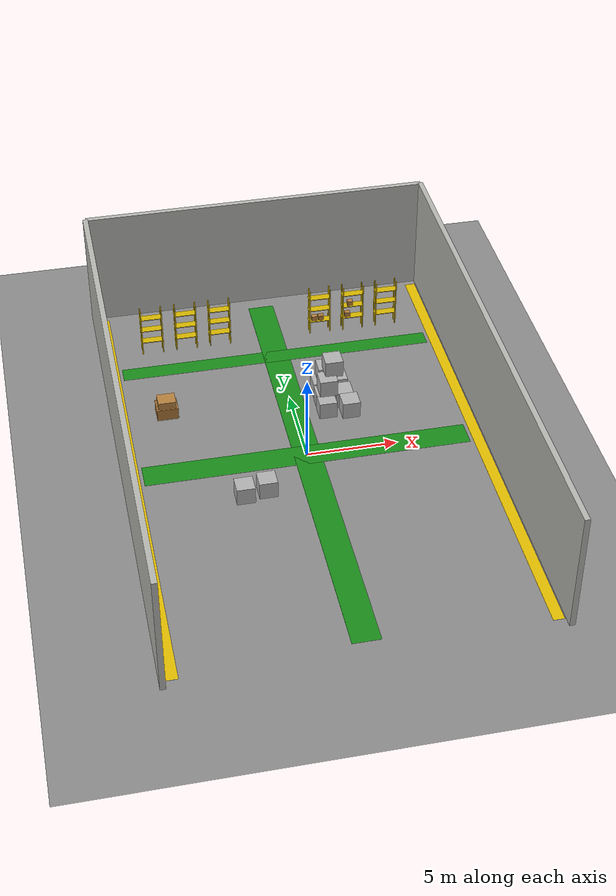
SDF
<sdf version="1.10">
 <world name="default">
  <model name="ground_plane">
   <static>true</static>
   <link name="link">
    <collision name="collision">
     <geometry><plane><normal>0 0 1</normal><size>40 30</size></plane></geometry>
     <surface><friction><ode><mu>0.0000000000000004</mu><mu2>0.0000000000000004</mu2></ode></friction></surface>
    </collision>
    <visual name="visual">
     <geometry><plane><normal>0 0 1</normal><size>20 30</size></plane></geometry>
     <material>
      <ambient>0.550000012 0.550000012 0.550000012 1</ambient>
      <diffuse>0.550000012 0.550000012 0.550000012 1</diffuse>
      <specular>0.100000001 0.100000001 0.100000001 1</specular>
     </material>
    </visual>
    <inertial>
     <mass>1</mass>
     <inertia><ixx>1</ixx><ixy>0</ixy><ixz>0</ixz><iyy>1</iyy><iyz>0</iyz><izz>1</izz></inertia>
    </inertial>
   </link>
  </model>
  <model name="wall_back">
   <static>true</static>
   <pose>10 0 3.5 0 0 0</pose>
   <link name="link">
    <collision name="c"><geometry><box><size>0.29999999999999999 30 7</size></box></geometry></collision>
    <visual name="v">
     <geometry><box><size>0.29999999999999999 30 7</size></box></geometry>
     <material>
      <ambient>0.720000029 0.720000029 0.699999988 1</ambient>
      <diffuse>0.720000029 0.720000029 0.699999988 1</diffuse>
     </material>
    </visual>
    <inertial>
     <mass>1</mass>
     <inertia><ixx>1</ixx><ixy>0</ixy><ixz>0</ixz><iyy>1</iyy><iyz>0</iyz><izz>1</izz></inertia>
    </inertial>
   </link>
  </model>
  <model name="wall_front">
   <static>true</static>
   <pose>-10 0 3.5 0 0 0</pose>
   <link name="link">
    <collision name="c"><geometry><box><size>0.29999999999999999 30 7</size></box></geometry></collision>
    <visual name="v">
     <geometry><box><size>0.29999999999999999 30 7</size></box></geometry>
     <material>
      <ambient>0.720000029 0.720000029 0.699999988 1</ambient>
      <diffuse>0.720000029 0.720000029 0.699999988 1</diffuse>
     </material>
    </visual>
    <inertial>
     <mass>1</mass>
     <inertia><ixx>1</ixx><ixy>0</ixy><ixz>0</ixz><iyy>1</iyy><iyz>0</iyz><izz>1</izz></inertia>
    </inertial>
   </link>
  </model>
  <model name="wall_right">
   <static>true</static>
   <pose>0 15 3.5 0 0 0</pose>
   <link name="link">
    <collision name="c"><geometry><box><size>20 0.29999999999999999 7</size></box></geometry></collision>
    <visual name="v">
     <geometry><box><size>20 0.29999999999999999 7</size></box></geometry>
     <material>
      <ambient>0.720000029 0.720000029 0.699999988 1</ambient>
      <diffuse>0.720000029 0.720000029 0.699999988 1</diffuse>
     </material>
    </visual>
    <inertial>
     <mass>1</mass>
     <inertia><ixx>1</ixx><ixy>0</ixy><ixz>0</ixz><iyy>1</iyy><iyz>0</iyz><izz>1</izz></inertia>
    </inertial>
   </link>
  </model>
  <model name="lane_centre_x">
   <static>true</static>
   <pose>0 0 0.002 0 0 0</pose>
   <link name="link">
    <visual name="v">
     <geometry><box><size>18 1.5 0.0050000000000000001</size></box></geometry>
     <material>
      <ambient>0.100000001 0.550000012 0.100000001 1</ambient>
      <diffuse>0.100000001 0.550000012 0.100000001 1</diffuse>
     </material>
    </visual>
    <inertial>
     <mass>1</mass>
     <inertia><ixx>1</ixx><ixy>0</ixy><ixz>0</ixz><iyy>1</iyy><iyz>0</iyz><izz>1</izz></inertia>
    </inertial>
   </link>
  </model>
  <model name="lane_centre_y">
   <static>true</static>
   <pose>0 0 0.0020000000949949026 0 0 0</pose>
   <link name="link">
    <visual name="v">
     <geometry><box><size>1.5 28 0.0050000000000000001</size></box></geometry>
     <material>
      <ambient>0.100000001 0.550000012 0.100000001 1</ambient>
      <diffuse>0.100000001 0.550000012 0.100000001 1</diffuse>
     </material>
    </visual>
    <inertial>
     <mass>1</mass>
     <inertia><ixx>1</ixx><ixy>0</ixy><ixz>0</ixz><iyy>1</iyy><iyz>0</iyz><izz>1</izz></inertia>
    </inertial>
   </link>
  </model>
  <model name="lane_right">
   <static>true</static>
   <pose>0 9 0.002 0 0 0</pose>
   <link name="link">
    <visual name="v">
     <geometry><box><size>18 1 0.0050000000000000001</size></box></geometry>
     <material>
      <ambient>0.100000001 0.550000012 0.100000001 1</ambient>
      <diffuse>0.100000001 0.550000012 0.100000001 1</diffuse>
     </material>
    </visual>
    <inertial>
     <mass>1</mass>
     <inertia><ixx>1</ixx><ixy>0</ixy><ixz>0</ixz><iyy>1</iyy><iyz>0</iyz><izz>1</izz></inertia>
    </inertial>
   </link>
  </model>
  <model name="hazard_front">
   <static>true</static>
   <pose>-9.5 0 0.002 0 0 0</pose>
   <link name="link">
    <visual name="v">
     <geometry><box><size>0.59999999999999998 29 0.0050000000000000001</size></box></geometry>
     <material><ambient>0.899999976 0.75 0 1</ambient><diffuse>0.899999976 0.75 0 1</diffuse></material>
    </visual>
    <inertial>
     <mass>1</mass>
     <inertia><ixx>1</ixx><ixy>0</ixy><ixz>0</ixz><iyy>1</iyy><iyz>0</iyz><izz>1</izz></inertia>
    </inertial>
   </link>
  </model>
  <model name="hazard_back">
   <static>true</static>
   <pose>9.5 0 0.002 0 0 0</pose>
   <link name="link">
    <visual name="v">
     <geometry><box><size>0.59999999999999998 29 0.0050000000000000001</size></box></geometry>
     <material><ambient>0.899999976 0.75 0 1</ambient><diffuse>0.899999976 0.75 0 1</diffuse></material>
    </visual>
    <inertial>
     <mass>1</mass>
     <inertia><ixx>1</ixx><ixy>0</ixy><ixz>0</ixz><iyy>1</iyy><iyz>0</iyz><izz>1</izz></inertia>
    </inertial>
   </link>
  </model>
  <model name="shelf_B1">
   <static>true</static>
   <pose>3 11 0 0 0 0</pose>
   <link name="link">
    <visual name="post_fl">
     <pose>-0.59999999999999998 -0.20000000000000001 1.5 0 0 0</pose>
     <geometry><box><size>0.059999999999999998 0.059999999999999998 3</size></box></geometry>
     <material>
      <ambient>0.850000024 0.720000029 0 1</ambient>
      <diffuse>0.850000024 0.720000029 0 1</diffuse>
     </material>
    </visual>
    <visual name="post_fr">
     <pose>0.59999999999999998 -0.20000000000000001 1.5 0 0 0</pose>
     <geometry><box><size>0.059999999999999998 0.059999999999999998 3</size></box></geometry>
     <material>
      <ambient>0.850000024 0.720000029 0 1</ambient>
      <diffuse>0.850000024 0.720000029 0 1</diffuse>
     </material>
    </visual>
    <visual name="post_bl">
     <pose>-0.59999999999999998 0.20000000000000001 1.5 0 0 0</pose>
     <geometry><box><size>0.059999999999999998 0.059999999999999998 3</size></box></geometry>
     <material>
      <ambient>0.850000024 0.720000029 0 1</ambient>
      <diffuse>0.850000024 0.720000029 0 1</diffuse>
     </material>
    </visual>
    <visual name="post_br">
     <pose>0.59999999999999998 0.20000000000000001 1.5 0 0 0</pose>
     <geometry><box><size>0.059999999999999998 0.059999999999999998 3</size></box></geometry>
     <material>
      <ambient>0.850000024 0.720000029 0 1</ambient>
      <diffuse>0.850000024 0.720000029 0 1</diffuse>
     </material>
    </visual>
    <visual name="shelf_l1">
     <pose>0 0 0.80000000000000004 0 0 0</pose>
     <geometry><box><size>1.3 0.45000000000000001 0.040000000000000001</size></box></geometry>
     <material>
      <ambient>0.850000024 0.720000029 0 1</ambient>
      <diffuse>0.850000024 0.720000029 0 1</diffuse>
     </material>
    </visual>
    <visual name="shelf_l2">
     <pose>0 0 1.6000000000000001 0 0 0</pose>
     <geometry><box><size>1.3 0.45000000000000001 0.040000000000000001</size></box></geometry>
     <material>
      <ambient>0.850000024 0.720000029 0 1</ambient>
      <diffuse>0.850000024 0.720000029 0 1</diffuse>
     </material>
    </visual>
    <visual name="shelf_l3">
     <pose>0 0 2.3999999999999999 0 0 0</pose>
     <geometry><box><size>1.3 0.45000000000000001 0.040000000000000001</size></box></geometry>
     <material>
      <ambient>0.850000024 0.720000029 0 1</ambient>
      <diffuse>0.850000024 0.720000029 0 1</diffuse>
     </material>
    </visual>
    <collision name="c">
     <geometry><box><size>1.3 0.5 3</size></box></geometry>
     <pose>0 0 1.5 0 0 0</pose>
    </collision>
    <inertial>
     <mass>1</mass>
     <inertia><ixx>1</ixx><ixy>0</ixy><ixz>0</ixz><iyy>1</iyy><iyz>0</iyz><izz>1</izz></inertia>
    </inertial>
   </link>
  </model>
  <model name="shelf_B2">
   <static>true</static>
   <pose>5 11 0 0 0 0</pose>
   <link name="link">
    <visual name="post_fl">
     <pose>-0.59999999999999998 -0.20000000000000001 1.5 0 0 0</pose>
     <geometry><box><size>0.059999999999999998 0.059999999999999998 3</size></box></geometry>
     <material>
      <ambient>0.850000024 0.720000029 0 1</ambient>
      <diffuse>0.850000024 0.720000029 0 1</diffuse>
     </material>
    </visual>
    <visual name="post_fr">
     <pose>0.59999999999999998 -0.20000000000000001 1.5 0 0 0</pose>
     <geometry><box><size>0.059999999999999998 0.059999999999999998 3</size></box></geometry>
     <material>
      <ambient>0.850000024 0.720000029 0 1</ambient>
      <diffuse>0.850000024 0.720000029 0 1</diffuse>
     </material>
    </visual>
    <visual name="post_bl">
     <pose>-0.59999999999999998 0.20000000000000001 1.5 0 0 0</pose>
     <geometry><box><size>0.059999999999999998 0.059999999999999998 3</size></box></geometry>
     <material>
      <ambient>0.850000024 0.720000029 0 1</ambient>
      <diffuse>0.850000024 0.720000029 0 1</diffuse>
     </material>
    </visual>
    <visual name="post_br">
     <pose>0.59999999999999998 0.20000000000000001 1.5 0 0 0</pose>
     <geometry><box><size>0.059999999999999998 0.059999999999999998 3</size></box></geometry>
     <material>
      <ambient>0.850000024 0.720000029 0 1</ambient>
      <diffuse>0.850000024 0.720000029 0 1</diffuse>
     </material>
    </visual>
    <visual name="shelf_l1">
     <pose>0 0 0.80000000000000004 0 0 0</pose>
     <geometry><box><size>1.3 0.45000000000000001 0.040000000000000001</size></box></geometry>
     <material>
      <ambient>0.850000024 0.720000029 0 1</ambient>
      <diffuse>0.850000024 0.720000029 0 1</diffuse>
     </material>
    </visual>
    <visual name="shelf_l2">
     <pose>0 0 1.6000000000000001 0 0 0</pose>
     <geometry><box><size>1.3 0.45000000000000001 0.040000000000000001</size></box></geometry>
     <material>
      <ambient>0.850000024 0.720000029 0 1</ambient>
      <diffuse>0.850000024 0.720000029 0 1</diffuse>
     </material>
    </visual>
    <visual name="shelf_l3">
     <pose>0 0 2.3999999999999999 0 0 0</pose>
     <geometry><box><size>1.3 0.45000000000000001 0.040000000000000001</size></box></geometry>
     <material>
      <ambient>0.850000024 0.720000029 0 1</ambient>
      <diffuse>0.850000024 0.720000029 0 1</diffuse>
     </material>
    </visual>
    <collision name="c">
     <geometry><box><size>1.3 0.5 3</size></box></geometry>
     <pose>0 0 1.5 0 0 0</pose>
    </collision>
    <inertial>
     <mass>1</mass>
     <inertia><ixx>1</ixx><ixy>0</ixy><ixz>0</ixz><iyy>1</iyy><iyz>0</iyz><izz>1</izz></inertia>
    </inertial>
   </link>
  </model>
  <model name="shelf_B3">
   <static>true</static>
   <pose>7 11 0 0 0 0</pose>
   <link name="link">
    <visual name="post_fl">
     <pose>-0.59999999999999998 -0.20000000000000001 1.5 0 0 0</pose>
     <geometry><box><size>0.059999999999999998 0.059999999999999998 3</size></box></geometry>
     <material>
      <ambient>0.850000024 0.720000029 0 1</ambient>
      <diffuse>0.850000024 0.720000029 0 1</diffuse>
     </material>
    </visual>
    <visual name="post_fr">
     <pose>0.59999999999999998 -0.20000000000000001 1.5 0 0 0</pose>
     <geometry><box><size>0.059999999999999998 0.059999999999999998 3</size></box></geometry>
     <material>
      <ambient>0.850000024 0.720000029 0 1</ambient>
      <diffuse>0.850000024 0.720000029 0 1</diffuse>
     </material>
    </visual>
    <visual name="post_bl">
     <pose>-0.59999999999999998 0.20000000000000001 1.5 0 0 0</pose>
     <geometry><box><size>0.059999999999999998 0.059999999999999998 3</size></box></geometry>
     <material>
      <ambient>0.850000024 0.720000029 0 1</ambient>
      <diffuse>0.850000024 0.720000029 0 1</diffuse>
     </material>
    </visual>
    <visual name="post_br">
     <pose>0.59999999999999998 0.20000000000000001 1.5 0 0 0</pose>
     <geometry><box><size>0.059999999999999998 0.059999999999999998 3</size></box></geometry>
     <material>
      <ambient>0.850000024 0.720000029 0 1</ambient>
      <diffuse>0.850000024 0.720000029 0 1</diffuse>
     </material>
    </visual>
    <visual name="shelf_l1">
     <pose>0 0 0.80000000000000004 0 0 0</pose>
     <geometry><box><size>1.3 0.45000000000000001 0.040000000000000001</size></box></geometry>
     <material>
      <ambient>0.850000024 0.720000029 0 1</ambient>
      <diffuse>0.850000024 0.720000029 0 1</diffuse>
     </material>
    </visual>
    <visual name="shelf_l2">
     <pose>0 0 1.6000000000000001 0 0 0</pose>
     <geometry><box><size>1.3 0.45000000000000001 0.040000000000000001</size></box></geometry>
     <material>
      <ambient>0.850000024 0.720000029 0 1</ambient>
      <diffuse>0.850000024 0.720000029 0 1</diffuse>
     </material>
    </visual>
    <visual name="shelf_l3">
     <pose>0 0 2.3999999999999999 0 0 0</pose>
     <geometry><box><size>1.3 0.45000000000000001 0.040000000000000001</size></box></geometry>
     <material>
      <ambient>0.850000024 0.720000029 0 1</ambient>
      <diffuse>0.850000024 0.720000029 0 1</diffuse>
     </material>
    </visual>
    <collision name="c">
     <geometry><box><size>1.3 0.5 3</size></box></geometry>
     <pose>0 0 1.5 0 0 0</pose>
    </collision>
    <inertial>
     <mass>1</mass>
     <inertia><ixx>1</ixx><ixy>0</ixy><ixz>0</ixz><iyy>1</iyy><iyz>0</iyz><izz>1</izz></inertia>
    </inertial>
   </link>
  </model>
  <model name="shelf_D1">
   <static>true</static>
   <pose>-3 11 0 0 0 0</pose>
   <link name="link">
    <visual name="post_fl">
     <pose>-0.59999999999999998 -0.20000000000000001 1.5 0 0 0</pose>
     <geometry><box><size>0.059999999999999998 0.059999999999999998 3</size></box></geometry>
     <material>
      <ambient>0.850000024 0.720000029 0 1</ambient>
      <diffuse>0.850000024 0.720000029 0 1</diffuse>
     </material>
    </visual>
    <visual name="post_fr">
     <pose>0.59999999999999998 -0.20000000000000001 1.5 0 0 0</pose>
     <geometry><box><size>0.059999999999999998 0.059999999999999998 3</size></box></geometry>
     <material>
      <ambient>0.850000024 0.720000029 0 1</ambient>
      <diffuse>0.850000024 0.720000029 0 1</diffuse>
     </material>
    </visual>
    <visual name="post_bl">
     <pose>-0.59999999999999998 0.20000000000000001 1.5 0 0 0</pose>
     <geometry><box><size>0.059999999999999998 0.059999999999999998 3</size></box></geometry>
     <material>
      <ambient>0.850000024 0.720000029 0 1</ambient>
      <diffuse>0.850000024 0.720000029 0 1</diffuse>
     </material>
    </visual>
    <visual name="post_br">
     <pose>0.59999999999999998 0.20000000000000001 1.5 0 0 0</pose>
     <geometry><box><size>0.059999999999999998 0.059999999999999998 3</size></box></geometry>
     <material>
      <ambient>0.850000024 0.720000029 0 1</ambient>
      <diffuse>0.850000024 0.720000029 0 1</diffuse>
     </material>
    </visual>
    <visual name="shelf_l1">
     <pose>0 0 0.80000000000000004 0 0 0</pose>
     <geometry><box><size>1.3 0.45000000000000001 0.040000000000000001</size></box></geometry>
     <material>
      <ambient>0.850000024 0.720000029 0 1</ambient>
      <diffuse>0.850000024 0.720000029 0 1</diffuse>
     </material>
    </visual>
    <visual name="shelf_l2">
     <pose>0 0 1.6000000000000001 0 0 0</pose>
     <geometry><box><size>1.3 0.45000000000000001 0.040000000000000001</size></box></geometry>
     <material>
      <ambient>0.850000024 0.720000029 0 1</ambient>
      <diffuse>0.850000024 0.720000029 0 1</diffuse>
     </material>
    </visual>
    <visual name="shelf_l3">
     <pose>0 0 2.3999999999999999 0 0 0</pose>
     <geometry><box><size>1.3 0.45000000000000001 0.040000000000000001</size></box></geometry>
     <material>
      <ambient>0.850000024 0.720000029 0 1</ambient>
      <diffuse>0.850000024 0.720000029 0 1</diffuse>
     </material>
    </visual>
    <collision name="c">
     <geometry><box><size>1.3 0.5 3</size></box></geometry>
     <pose>0 0 1.5 0 0 0</pose>
    </collision>
    <inertial>
     <mass>1</mass>
     <inertia><ixx>1</ixx><ixy>0</ixy><ixz>0</ixz><iyy>1</iyy><iyz>0</iyz><izz>1</izz></inertia>
    </inertial>
   </link>
  </model>
  <model name="shelf_D2">
   <static>true</static>
   <pose>-5 11 0 0 0 0</pose>
   <link name="link">
    <visual name="post_fl">
     <pose>-0.59999999999999998 -0.20000000000000001 1.5 0 0 0</pose>
     <geometry><box><size>0.059999999999999998 0.059999999999999998 3</size></box></geometry>
     <material>
      <ambient>0.850000024 0.720000029 0 1</ambient>
      <diffuse>0.850000024 0.720000029 0 1</diffuse>
     </material>
    </visual>
    <visual name="post_fr">
     <pose>0.59999999999999998 -0.20000000000000001 1.5 0 0 0</pose>
     <geometry><box><size>0.059999999999999998 0.059999999999999998 3</size></box></geometry>
     <material>
      <ambient>0.850000024 0.720000029 0 1</ambient>
      <diffuse>0.850000024 0.720000029 0 1</diffuse>
     </material>
    </visual>
    <visual name="post_bl">
     <pose>-0.59999999999999998 0.20000000000000001 1.5 0 0 0</pose>
     <geometry><box><size>0.059999999999999998 0.059999999999999998 3</size></box></geometry>
     <material>
      <ambient>0.850000024 0.720000029 0 1</ambient>
      <diffuse>0.850000024 0.720000029 0 1</diffuse>
     </material>
    </visual>
    <visual name="post_br">
     <pose>0.59999999999999998 0.20000000000000001 1.5 0 0 0</pose>
     <geometry><box><size>0.059999999999999998 0.059999999999999998 3</size></box></geometry>
     <material>
      <ambient>0.850000024 0.720000029 0 1</ambient>
      <diffuse>0.850000024 0.720000029 0 1</diffuse>
     </material>
    </visual>
    <visual name="shelf_l1">
     <pose>0 0 0.80000000000000004 0 0 0</pose>
     <geometry><box><size>1.3 0.45000000000000001 0.040000000000000001</size></box></geometry>
     <material>
      <ambient>0.850000024 0.720000029 0 1</ambient>
      <diffuse>0.850000024 0.720000029 0 1</diffuse>
     </material>
    </visual>
    <visual name="shelf_l2">
     <pose>0 0 1.6000000000000001 0 0 0</pose>
     <geometry><box><size>1.3 0.45000000000000001 0.040000000000000001</size></box></geometry>
     <material>
      <ambient>0.850000024 0.720000029 0 1</ambient>
      <diffuse>0.850000024 0.720000029 0 1</diffuse>
     </material>
    </visual>
    <visual name="shelf_l3">
     <pose>0 0 2.3999999999999999 0 0 0</pose>
     <geometry><box><size>1.3 0.45000000000000001 0.040000000000000001</size></box></geometry>
     <material>
      <ambient>0.850000024 0.720000029 0 1</ambient>
      <diffuse>0.850000024 0.720000029 0 1</diffuse>
     </material>
    </visual>
    <collision name="c">
     <geometry><box><size>1.3 0.5 3</size></box></geometry>
     <pose>0 0 1.5 0 0 0</pose>
    </collision>
    <inertial>
     <mass>1</mass>
     <inertia><ixx>1</ixx><ixy>0</ixy><ixz>0</ixz><iyy>1</iyy><iyz>0</iyz><izz>1</izz></inertia>
    </inertial>
   </link>
  </model>
  <model name="shelf_D3">
   <static>true</static>
   <pose>-7 11 0 0 0 0</pose>
   <link name="link">
    <visual name="post_fl">
     <pose>-0.59999999999999998 -0.20000000000000001 1.5 0 0 0</pose>
     <geometry><box><size>0.059999999999999998 0.059999999999999998 3</size></box></geometry>
     <material>
      <ambient>0.850000024 0.720000029 0 1</ambient>
      <diffuse>0.850000024 0.720000029 0 1</diffuse>
     </material>
    </visual>
    <visual name="post_fr">
     <pose>0.59999999999999998 -0.20000000000000001 1.5 0 0 0</pose>
     <geometry><box><size>0.059999999999999998 0.059999999999999998 3</size></box></geometry>
     <material>
      <ambient>0.850000024 0.720000029 0 1</ambient>
      <diffuse>0.850000024 0.720000029 0 1</diffuse>
     </material>
    </visual>
    <visual name="post_bl">
     <pose>-0.59999999999999998 0.20000000000000001 1.5 0 0 0</pose>
     <geometry><box><size>0.059999999999999998 0.059999999999999998 3</size></box></geometry>
     <material>
      <ambient>0.850000024 0.720000029 0 1</ambient>
      <diffuse>0.850000024 0.720000029 0 1</diffuse>
     </material>
    </visual>
    <visual name="post_br">
     <pose>0.59999999999999998 0.20000000000000001 1.5 0 0 0</pose>
     <geometry><box><size>0.059999999999999998 0.059999999999999998 3</size></box></geometry>
     <material>
      <ambient>0.850000024 0.720000029 0 1</ambient>
      <diffuse>0.850000024 0.720000029 0 1</diffuse>
     </material>
    </visual>
    <visual name="shelf_l1">
     <pose>0 0 0.80000000000000004 0 0 0</pose>
     <geometry><box><size>1.3 0.45000000000000001 0.040000000000000001</size></box></geometry>
     <material>
      <ambient>0.850000024 0.720000029 0 1</ambient>
      <diffuse>0.850000024 0.720000029 0 1</diffuse>
     </material>
    </visual>
    <visual name="shelf_l2">
     <pose>0 0 1.6000000000000001 0 0 0</pose>
     <geometry><box><size>1.3 0.45000000000000001 0.040000000000000001</size></box></geometry>
     <material>
      <ambient>0.850000024 0.720000029 0 1</ambient>
      <diffuse>0.850000024 0.720000029 0 1</diffuse>
     </material>
    </visual>
    <visual name="shelf_l3">
     <pose>0 0 2.3999999999999999 0 0 0</pose>
     <geometry><box><size>1.3 0.45000000000000001 0.040000000000000001</size></box></geometry>
     <material>
      <ambient>0.850000024 0.720000029 0 1</ambient>
      <diffuse>0.850000024 0.720000029 0 1</diffuse>
     </material>
    </visual>
    <collision name="c">
     <geometry><box><size>1.3 0.5 3</size></box></geometry>
     <pose>0 0 1.5 0 0 0</pose>
    </collision>
    <inertial>
     <mass>1</mass>
     <inertia><ixx>1</ixx><ixy>0</ixy><ixz>0</ixz><iyy>1</iyy><iyz>0</iyz><izz>1</izz></inertia>
    </inertial>
   </link>
  </model>
  <model name="box_B1_l1_a">
   <static>true</static>
   <pose>2.7000000000000002 11 0.96999999999999997 0 0 0</pose>
   <link name="link">
    <visual name="v">
     <geometry><box><size>0.32000000000000001 0.28000000000000003 0.29999999999999999</size></box></geometry>
     <material><ambient>0.720000029 0.5 0.25 1</ambient><diffuse>0.720000029 0.5 0.25 1</diffuse></material>
    </visual>
    <collision name="c">
     <geometry><box><size>0.32000000000000001 0.28000000000000003 0.29999999999999999</size></box></geometry>
    </collision>
    <inertial>
     <mass>1</mass>
     <inertia><ixx>1</ixx><ixy>0</ixy><ixz>0</ixz><iyy>1</iyy><iyz>0</iyz><izz>1</izz></inertia>
    </inertial>
   </link>
  </model>
  <model name="box_B1_l1_b">
   <static>true</static>
   <pose>3.1000000000000001 11 0.96999999999999997 0 0 0</pose>
   <link name="link">
    <visual name="v">
     <geometry><box><size>0.32000000000000001 0.28000000000000003 0.29999999999999999</size></box></geometry>
     <material>
      <ambient>0.680000007 0.479999989 0.219999999 1</ambient>
      <diffuse>0.680000007 0.479999989 0.219999999 1</diffuse>
     </material>
    </visual>
    <collision name="c">
     <geometry><box><size>0.32000000000000001 0.28000000000000003 0.29999999999999999</size></box></geometry>
    </collision>
    <inertial>
     <mass>1</mass>
     <inertia><ixx>1</ixx><ixy>0</ixy><ixz>0</ixz><iyy>1</iyy><iyz>0</iyz><izz>1</izz></inertia>
    </inertial>
   </link>
  </model>
  <model name="box_B2_l1_a">
   <static>true</static>
   <pose>4.7000000000000002 11 0.96999999999999997 0 0 0</pose>
   <link name="link">
    <visual name="v">
     <geometry><box><size>0.32000000000000001 0.28000000000000003 0.29999999999999999</size></box></geometry>
     <material>
      <ambient>0.699999988 0.49000001 0.230000004 1</ambient>
      <diffuse>0.699999988 0.49000001 0.230000004 1</diffuse>
     </material>
    </visual>
    <collision name="c">
     <geometry><box><size>0.32000000000000001 0.28000000000000003 0.29999999999999999</size></box></geometry>
    </collision>
    <inertial>
     <mass>1</mass>
     <inertia><ixx>1</ixx><ixy>0</ixy><ixz>0</ixz><iyy>1</iyy><iyz>0</iyz><izz>1</izz></inertia>
    </inertial>
   </link>
  </model>
  <model name="box_B2_l2_a">
   <static>true</static>
   <pose>4.8499999999999996 11 1.77 0 0 0</pose>
   <link name="link">
    <visual name="v">
     <geometry><box><size>0.32000000000000001 0.28000000000000003 0.29999999999999999</size></box></geometry>
     <material><ambient>0.720000029 0.5 0.25 1</ambient><diffuse>0.720000029 0.5 0.25 1</diffuse></material>
    </visual>
    <collision name="c">
     <geometry><box><size>0.32000000000000001 0.28000000000000003 0.29999999999999999</size></box></geometry>
    </collision>
    <inertial>
     <mass>1</mass>
     <inertia><ixx>1</ixx><ixy>0</ixy><ixz>0</ixz><iyy>1</iyy><iyz>0</iyz><izz>1</izz></inertia>
    </inertial>
   </link>
  </model>
  <model name="pallet_stack_4">
   <static>true</static>
   <pose>-7 5 0.34999999999999998 0 0 0</pose>
   <link name="link">
    <visual name="v">
     <geometry><box><size>1.2 1 0.69999999999999996</size></box></geometry>
     <material>
      <ambient>0.680000007 0.469999999 0.219999999 1</ambient>
      <diffuse>0.680000007 0.469999999 0.219999999 1</diffuse>
     </material>
    </visual>
    <collision name="c"><geometry><box><size>1.2 1 0.69999999999999996</size></box></geometry></collision>
    <inertial>
     <mass>1</mass>
     <inertia><ixx>1</ixx><ixy>0</ixy><ixz>0</ixz><iyy>1</iyy><iyz>0</iyz><izz>1</izz></inertia>
    </inertial>
   </link>
  </model>
  <model name="pallet_stack_4b">
   <static>true</static>
   <pose>-7 5 0.90000000000000002 0 0 0</pose>
   <link name="link">
    <visual name="v">
     <geometry><box><size>1 0.84999999999999998 0.45000000000000001</size></box></geometry>
     <material>
      <ambient>0.720000029 0.50999999 0.25 1</ambient>
      <diffuse>0.720000029 0.50999999 0.25 1</diffuse>
     </material>
    </visual>
    <collision name="c">
     <geometry><box><size>1 0.84999999999999998 0.45000000000000001</size></box></geometry>
    </collision>
    <inertial>
     <mass>1</mass>
     <inertia><ixx>1</ixx><ixy>0</ixy><ixz>0</ixz><iyy>1</iyy><iyz>0</iyz><izz>1</izz></inertia>
    </inertial>
   </link>
  </model>
  <model name="box">
   <pose>2.828475707995167 5.3231596004156279 0.4999999826396927 -2.5431755508334723e-09 2.6376474180453292e-09 2.8567160279656808e-07</pose>
   <link name="box_link">
    <inertial>
     <inertia><ixx>0.16666</ixx><ixy>0</ixy><ixz>0</ixz><iyy>0.16666</iyy><iyz>0</iyz><izz>0.16666</izz></inertia>
     <mass>1</mass>
    </inertial>
    <collision name="box_collision"><geometry><box><size>1 1 1</size></box></geometry></collision>
    <visual name="box_visual">
     <geometry><box><size>1 1 1</size></box></geometry>
     <material>
      <ambient>0.300000012 0.300000012 0.300000012 1</ambient>
      <diffuse>0.699999988 0.699999988 0.699999988 1</diffuse>
      <specular>1 1 1 1</specular>
     </material>
    </visual>
   </link>
   <static>false</static>
  </model>
  <model name="box_0">
   <pose>2.8905074129163104 4.0938234484860034 0.49999998589887013 -8.1645113895153207e-09 -8.9578225734890165e-09 5.3548414606377087e-07</pose>
   <link name="box_link">
    <inertial>
     <inertia><ixx>0.16666</ixx><ixy>0</ixy><ixz>0</ixz><iyy>0.16666</iyy><iyz>0</iyz><izz>0.16666</izz></inertia>
     <mass>1</mass>
    </inertial>
    <collision name="box_collision"><geometry><box><size>1 1 1</size></box></geometry></collision>
    <visual name="box_visual">
     <geometry><box><size>1 1 1</size></box></geometry>
     <material>
      <ambient>0.300000012 0.300000012 0.300000012 1</ambient>
      <diffuse>0.699999988 0.699999988 0.699999988 1</diffuse>
      <specular>1 1 1 1</specular>
     </material>
    </visual>
   </link>
   <static>false</static>
  </model>
  <model name="box_1">
   <pose>2.1236896075795006 5.1559693859980014 1.4999999719644466 -1.5320055265947546e-09 -2.1534500561233718e-09 1.5419714992920172e-05</pose>
   <link name="box_link">
    <inertial>
     <inertia><ixx>0.16666</ixx><ixy>0</ixy><ixz>0</ixz><iyy>0.16666</iyy><iyz>0</iyz><izz>0.16666</izz></inertia>
     <mass>1</mass>
    </inertial>
    <collision name="box_collision"><geometry><box><size>1 1 1</size></box></geometry></collision>
    <visual name="box_visual">
     <geometry><box><size>1 1 1</size></box></geometry>
     <material>
      <ambient>0.300000012 0.300000012 0.300000012 1</ambient>
      <diffuse>0.699999988 0.699999988 0.699999988 1</diffuse>
      <specular>1 1 1 1</specular>
     </material>
    </visual>
   </link>
   <static>false</static>
  </model>
  <model name="box_2">
   <pose>1.8113752068652764 4.0748608437337159 0.49999998527198475 -7.0457699511432481e-09 1.599118030445685e-09 -2.7721157664814811e-07</pose>
   <link name="box_link">
    <inertial>
     <inertia><ixx>0.16666</ixx><ixy>0</ixy><ixz>0</ixz><iyy>0.16666</iyy><iyz>0</iyz><izz>0.16666</izz></inertia>
     <mass>1</mass>
    </inertial>
    <collision name="box_collision"><geometry><box><size>1 1 1</size></box></geometry></collision>
    <visual name="box_visual">
     <geometry><box><size>1 1 1</size></box></geometry>
     <material>
      <ambient>0.300000012 0.300000012 0.300000012 1</ambient>
      <diffuse>0.699999988 0.699999988 0.699999988 1</diffuse>
      <specular>1 1 1 1</specular>
     </material>
    </visual>
   </link>
   <static>false</static>
  </model>
  <model name="box_3">
   <pose>1.7903865605300984 3.3350142818886988 0.49999998460458606 5.9808087482631095e-09 2.4092335624615089e-09 1.3836854351253172e-06</pose>
   <link name="box_link">
    <inertial>
     <inertia><ixx>0.16666</ixx><ixy>0</ixy><ixz>0</ixz><iyy>0.16666</iyy><iyz>0</iyz><izz>0.16666</izz></inertia>
     <mass>1</mass>
    </inertial>
    <collision name="box_collision"><geometry><box><size>1 1 1</size></box></geometry></collision>
    <visual name="box_visual">
     <geometry><box><size>1 1 1</size></box></geometry>
     <material>
      <ambient>0.300000012 0.300000012 0.300000012 1</ambient>
      <diffuse>0.699999988 0.699999988 0.699999988 1</diffuse>
      <specular>1 1 1 1</specular>
     </material>
    </visual>
   </link>
   <static>false</static>
  </model>
  <model name="box_4">
   <pose>3.0628216730634956 3.0938240587911077 0.49999999019962699 9.0630668850216629e-09 9.6213494870727505e-14 6.9823572938654312e-07</pose>
   <link name="box_link">
    <inertial>
     <inertia><ixx>0.16666</ixx><ixy>0</ixy><ixz>0</ixz><iyy>0.16666</iyy><iyz>0</iyz><izz>0.16666</izz></inertia>
     <mass>1</mass>
    </inertial>
    <collision name="box_collision"><geometry><box><size>1 1 1</size></box></geometry></collision>
    <visual name="box_visual">
     <geometry><box><size>1 1 1</size></box></geometry>
     <material>
      <ambient>0.300000012 0.300000012 0.300000012 1</ambient>
      <diffuse>0.699999988 0.699999988 0.699999988 1</diffuse>
      <specular>1 1 1 1</specular>
     </material>
    </visual>
   </link>
   <static>false</static>
  </model>
  <model name="box_5">
   <pose>1.8345357018990496 5.1481176362470302 0.49999998293157782 -2.6032695004733426e-09 -6.680226908130635e-09 2.2852373197957071e-06</pose>
   <link name="box_link">
    <inertial>
     <inertia><ixx>0.16666</ixx><ixy>0</ixy><ixz>0</ixz><iyy>0.16666</iyy><iyz>0</iyz><izz>0.16666</izz></inertia>
     <mass>1</mass>
    </inertial>
    <collision name="box_collision"><geometry><box><size>1 1 1</size></box></geometry></collision>
    <visual name="box_visual">
     <geometry><box><size>1 1 1</size></box></geometry>
     <material>
      <ambient>0.300000012 0.300000012 0.300000012 1</ambient>
      <diffuse>0.699999988 0.699999988 0.699999988 1</diffuse>
      <specular>1 1 1 1</specular>
     </material>
    </visual>
   </link>
   <static>false</static>
  </model>
  <model name="box_6">
   <pose>1.9654528726124689 3.9984680014021228 1.4999998837103037 2.3287681950198461e-09 3.4854441734640139e-08 -7.4197143704355135e-06</pose>
   <link name="box_link">
    <inertial>
     <inertia><ixx>0.16666</ixx><ixy>0</ixy><ixz>0</ixz><iyy>0.16666</iyy><iyz>0</iyz><izz>0.16666</izz></inertia>
     <mass>1</mass>
    </inertial>
    <collision name="box_collision"><geometry><box><size>1 1 1</size></box></geometry></collision>
    <visual name="box_visual">
     <geometry><box><size>1 1 1</size></box></geometry>
     <material>
      <ambient>0.300000012 0.300000012 0.300000012 1</ambient>
      <diffuse>0.699999988 0.699999988 0.699999988 1</diffuse>
      <specular>1 1 1 1</specular>
     </material>
    </visual>
   </link>
   <static>false</static>
  </model>
  <model name="box_7">
   <pose>2.369520411123808 4.5041541778076581 2.4276074860361745 0.010531528656509671 3.115693000661867e-06 1.3200306900116706e-05</pose>
   <link name="box_link">
    <inertial>
     <inertia><ixx>0.16666</ixx><ixy>0</ixy><ixz>0</ixz><iyy>0.16666</iyy><iyz>0</iyz><izz>0.16666</izz></inertia>
     <mass>1</mass>
    </inertial>
    <collision name="box_collision"><geometry><box><size>1 1 1</size></box></geometry></collision>
    <visual name="box_visual">
     <geometry><box><size>1 1 1</size></box></geometry>
     <material>
      <ambient>0.300000012 0.300000012 0.300000012 1</ambient>
      <diffuse>0.699999988 0.699999988 0.699999988 1</diffuse>
      <specular>1 1 1 1</specular>
     </material>
    </visual>
   </link>
   <static>false</static>
  </model>
  <model name="box_8">
   <pose>-2.7014725332939475 -2.5046328968134426 0.49999998716850719 -9.9753456691353529e-09 -4.8421784179953285e-09 -7.7603274807252209e-06</pose>
   <link name="box_link">
    <inertial>
     <inertia><ixx>0.16666</ixx><ixy>0</ixy><ixz>0</ixz><iyy>0.16666</iyy><iyz>0</iyz><izz>0.16666</izz></inertia>
     <mass>1</mass>
    </inertial>
    <collision name="box_collision"><geometry><box><size>1 1 1</size></box></geometry></collision>
    <visual name="box_visual">
     <geometry><box><size>1 1 1</size></box></geometry>
     <material>
      <ambient>0.300000012 0.300000012 0.300000012 1</ambient>
      <diffuse>0.699999988 0.699999988 0.699999988 1</diffuse>
      <specular>1 1 1 1</specular>
     </material>
    </visual>
   </link>
   <static>false</static>
  </model>
  <model name="box_10">
   <pose>-3.9437953701144401 -2.7231331843233835 0.49999999990199806 6.2287739151293738e-22 9.3279666454713669e-22 -3.6315533669320137e-22</pose>
   <link name="box_link">
    <inertial>
     <inertia><ixx>0.16666</ixx><ixy>0</ixy><ixz>0</ixz><iyy>0.16666</iyy><iyz>0</iyz><izz>0.16666</izz></inertia>
     <mass>1</mass>
    </inertial>
    <collision name="box_collision"><geometry><box><size>1 1 1</size></box></geometry></collision>
    <visual name="box_visual">
     <geometry><box><size>1 1 1</size></box></geometry>
     <material>
      <ambient>0.300000012 0.300000012 0.300000012 1</ambient>
      <diffuse>0.699999988 0.699999988 0.699999988 1</diffuse>
      <specular>1 1 1 1</specular>
     </material>
    </visual>
   </link>
   <static>false</static>
  </model>
 </world>
</sdf>
